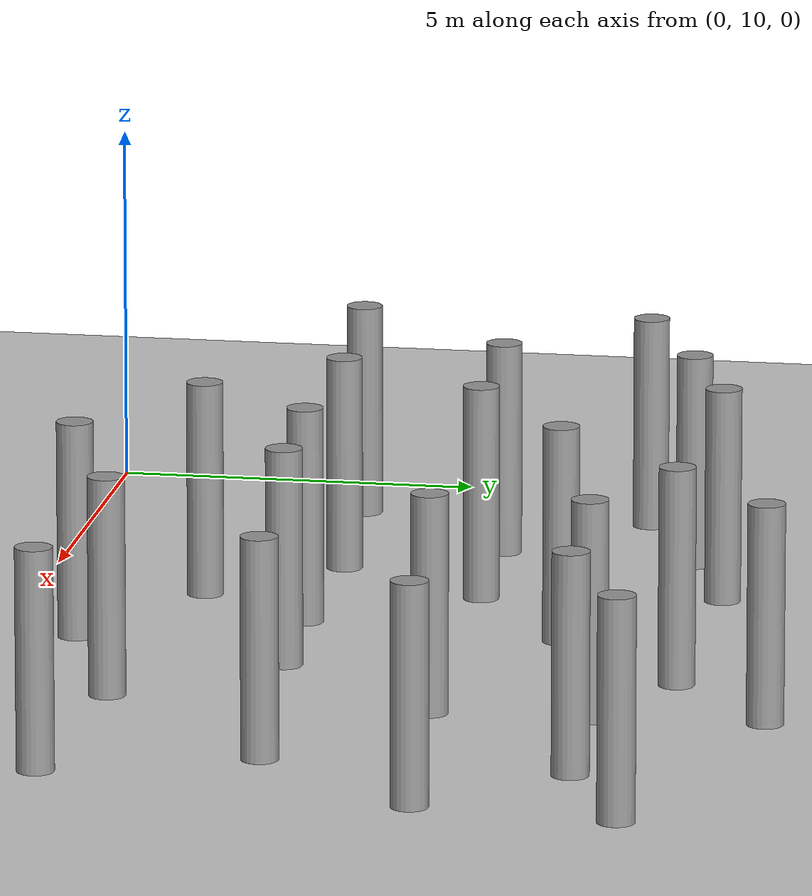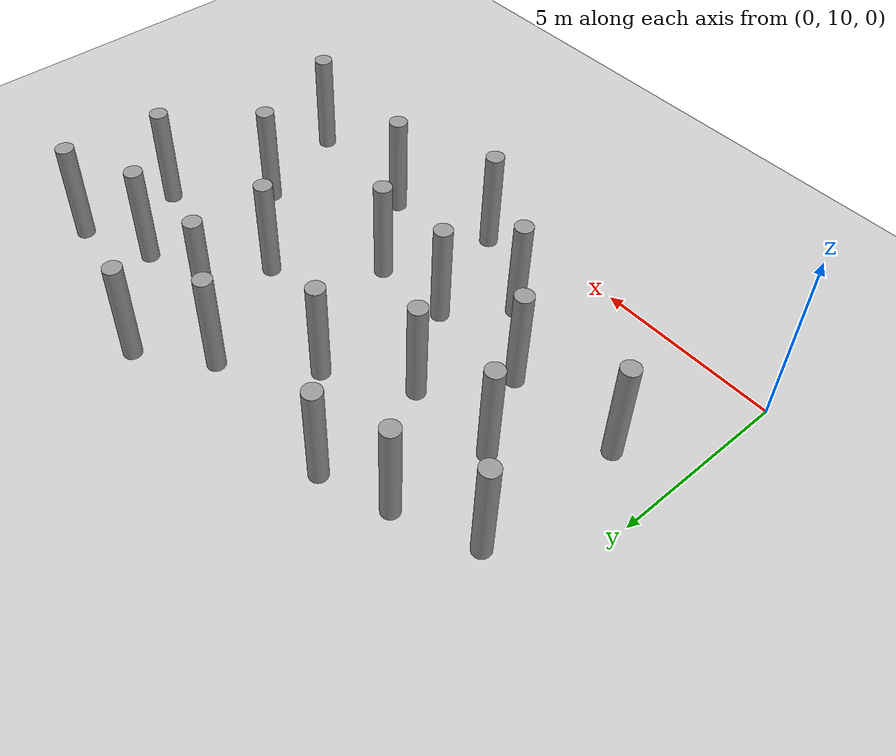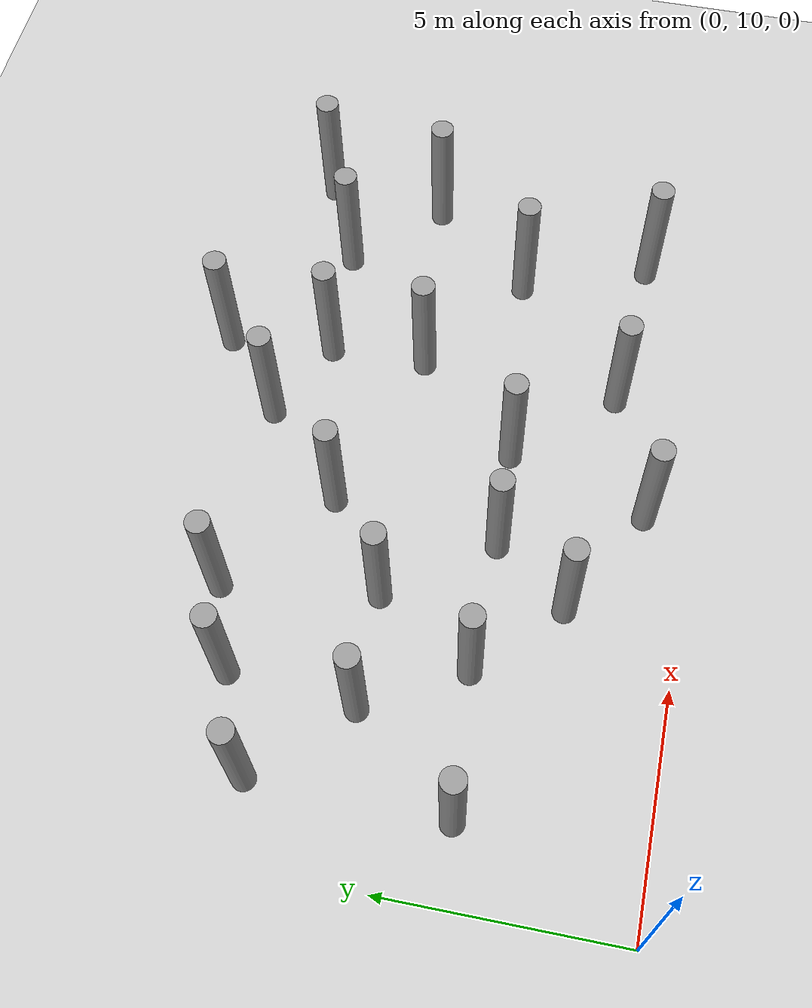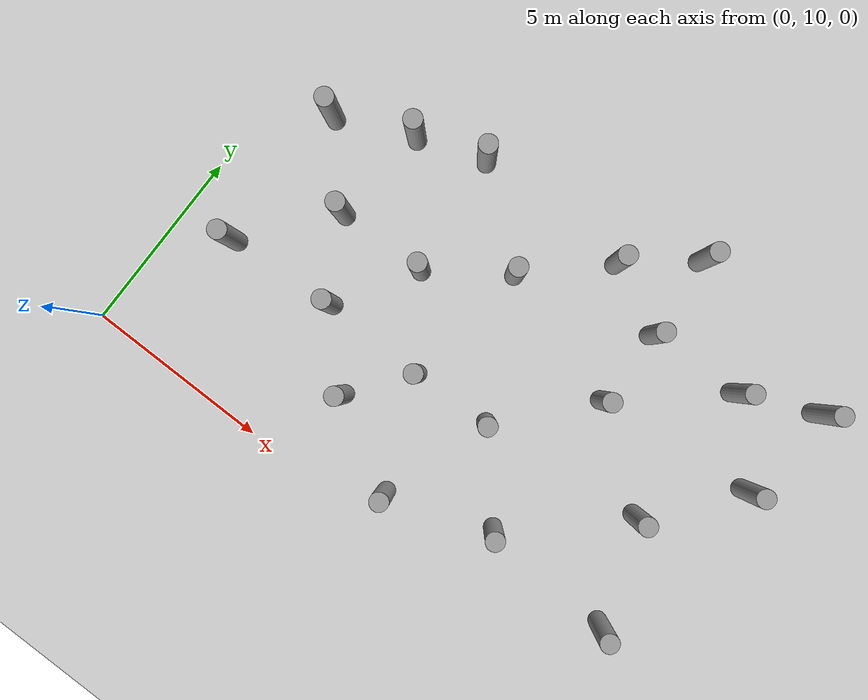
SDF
<sdf version="1.6">
 <world name="default">
  <model name="ground_plane">
   <static>1</static>
   <link name="link">
    <collision name="collision">
     <geometry><plane><normal>0 0 1</normal><size>100 100</size></plane></geometry>
     <surface><friction><ode><mu>100</mu><mu2>50</mu2></ode></friction></surface>
    </collision>
    <visual name="visual">
     <cast_shadows>0</cast_shadows>
     <geometry><plane><normal>0 0 1</normal><size>100 100</size></plane></geometry>
     <material>
      <script><uri>file://media/materials/scripts/gazebo.material</uri><name>Gazebo/Grey</name></script>
     </material>
    </visual>
   </link>
  </model>
  <model name="LjjForest_1">
   <link name="link_0_clone_1">
    <inertial>
     <mass>1</mass>
     <inertia><ixx>0.145833</ixx><ixy>0</ixy><ixz>0</ixz><iyy>0.145833</iyy><iyz>0</iyz><izz>0.125</izz></inertia>
    </inertial>
    <pose>-1.2394 -1.64814 0 0 -0 0</pose>
    <visual name="visual">
     <geometry><cylinder><radius>0.25</radius><length>3</length></cylinder></geometry>
     <material>
      <lighting>1</lighting>
      <script><uri>file://media/materials/scripts/gazebo.material</uri><name>Gazebo/Grey</name></script>
      <shader type="vertex"><normal_map>__default__</normal_map></shader>
      <ambient>0.3 0.3 0.3 1</ambient>
      <diffuse>0.7 0.7 0.7 1</diffuse>
      <specular>0.01 0.01 0.01 1</specular>
      <emissive>0 0 0 1</emissive>
     </material>
    </visual>
    <collision name="collision">
     <geometry><cylinder><radius>0.25</radius><length>3</length></cylinder></geometry>
     <surface>
      <friction>
       <ode><mu>1</mu><mu2>1</mu2><fdir1>0 0 0</fdir1><slip1>0</slip1><slip2>0</slip2></ode>
       <torsional>
        <coefficient>1</coefficient>
        <patch_radius>0</patch_radius>
        <surface_radius>0</surface_radius>
        <use_patch_radius>1</use_patch_radius>
        <ode><slip>0</slip></ode>
       </torsional>
      </friction>
      <bounce><restitution_coefficient>0</restitution_coefficient><threshold>1e+06</threshold></bounce>
      <contact>
       <collide_without_contact>0</collide_without_contact>
       <collide_without_contact_bitmask>1</collide_without_contact_bitmask>
       <collide_bitmask>1</collide_bitmask>
       <ode>
        <soft_cfm>0</soft_cfm>
        <soft_erp>0.2</soft_erp>
        <kp>1e+13</kp>
        <kd>1</kd>
        <max_vel>0.01</max_vel>
        <min_depth>0</min_depth>
       </ode>
       <bullet>
        <split_impulse>1</split_impulse>
        <split_impulse_penetration_threshold>-0.01</split_impulse_penetration_threshold>
        <soft_cfm>0</soft_cfm>
        <soft_erp>0.2</soft_erp>
        <kp>1e+13</kp>
        <kd>1</kd>
       </bullet>
      </contact>
     </surface>
    </collision>
   </link>
   <link name="link_0_clone_10">
    <inertial>
     <mass>1</mass>
     <inertia><ixx>0.145833</ixx><ixy>0</ixy><ixz>0</ixz><iyy>0.145833</iyy><iyz>0</iyz><izz>0.125</izz></inertia>
    </inertial>
    <pose>4.92442 -4.7051 0 0 -0 0</pose>
    <visual name="visual">
     <geometry><cylinder><radius>0.25</radius><length>3</length></cylinder></geometry>
     <material>
      <lighting>1</lighting>
      <script><uri>file://media/materials/scripts/gazebo.material</uri><name>Gazebo/Grey</name></script>
      <shader type="vertex"><normal_map>__default__</normal_map></shader>
      <ambient>0.3 0.3 0.3 1</ambient>
      <diffuse>0.7 0.7 0.7 1</diffuse>
      <specular>0.01 0.01 0.01 1</specular>
      <emissive>0 0 0 1</emissive>
     </material>
    </visual>
    <collision name="collision">
     <geometry><cylinder><radius>0.25</radius><length>3</length></cylinder></geometry>
     <surface>
      <friction>
       <ode><mu>1</mu><mu2>1</mu2><fdir1>0 0 0</fdir1><slip1>0</slip1><slip2>0</slip2></ode>
       <torsional>
        <coefficient>1</coefficient>
        <patch_radius>0</patch_radius>
        <surface_radius>0</surface_radius>
        <use_patch_radius>1</use_patch_radius>
        <ode><slip>0</slip></ode>
       </torsional>
      </friction>
      <bounce><restitution_coefficient>0</restitution_coefficient><threshold>1e+06</threshold></bounce>
      <contact>
       <collide_without_contact>0</collide_without_contact>
       <collide_without_contact_bitmask>1</collide_without_contact_bitmask>
       <collide_bitmask>1</collide_bitmask>
       <ode>
        <soft_cfm>0</soft_cfm>
        <soft_erp>0.2</soft_erp>
        <kp>1e+13</kp>
        <kd>1</kd>
        <max_vel>0.01</max_vel>
        <min_depth>0</min_depth>
       </ode>
       <bullet>
        <split_impulse>1</split_impulse>
        <split_impulse_penetration_threshold>-0.01</split_impulse_penetration_threshold>
        <soft_cfm>0</soft_cfm>
        <soft_erp>0.2</soft_erp>
        <kp>1e+13</kp>
        <kd>1</kd>
       </bullet>
      </contact>
     </surface>
    </collision>
   </link>
   <link name="link_0_clone_11">
    <inertial>
     <mass>1</mass>
     <inertia><ixx>0.145833</ixx><ixy>0</ixy><ixz>0</ixz><iyy>0.145833</iyy><iyz>0</iyz><izz>0.125</izz></inertia>
    </inertial>
    <pose>2.92414 -7.00263 0 0 -0 0</pose>
    <visual name="visual">
     <geometry><cylinder><radius>0.25</radius><length>3</length></cylinder></geometry>
     <material>
      <lighting>1</lighting>
      <script><uri>file://media/materials/scripts/gazebo.material</uri><name>Gazebo/Grey</name></script>
      <shader type="vertex"><normal_map>__default__</normal_map></shader>
      <ambient>0.3 0.3 0.3 1</ambient>
      <diffuse>0.7 0.7 0.7 1</diffuse>
      <specular>0.01 0.01 0.01 1</specular>
      <emissive>0 0 0 1</emissive>
     </material>
    </visual>
    <collision name="collision">
     <geometry><cylinder><radius>0.25</radius><length>3</length></cylinder></geometry>
     <surface>
      <friction>
       <ode><mu>1</mu><mu2>1</mu2><fdir1>0 0 0</fdir1><slip1>0</slip1><slip2>0</slip2></ode>
       <torsional>
        <coefficient>1</coefficient>
        <patch_radius>0</patch_radius>
        <surface_radius>0</surface_radius>
        <use_patch_radius>1</use_patch_radius>
        <ode><slip>0</slip></ode>
       </torsional>
      </friction>
      <bounce><restitution_coefficient>0</restitution_coefficient><threshold>1e+06</threshold></bounce>
      <contact>
       <collide_without_contact>0</collide_without_contact>
       <collide_without_contact_bitmask>1</collide_without_contact_bitmask>
       <collide_bitmask>1</collide_bitmask>
       <ode>
        <soft_cfm>0</soft_cfm>
        <soft_erp>0.2</soft_erp>
        <kp>1e+13</kp>
        <kd>1</kd>
        <max_vel>0.01</max_vel>
        <min_depth>0</min_depth>
       </ode>
       <bullet>
        <split_impulse>1</split_impulse>
        <split_impulse_penetration_threshold>-0.01</split_impulse_penetration_threshold>
        <soft_cfm>0</soft_cfm>
        <soft_erp>0.2</soft_erp>
        <kp>1e+13</kp>
        <kd>1</kd>
       </bullet>
      </contact>
     </surface>
    </collision>
   </link>
   <link name="link_0_clone_12">
    <inertial>
     <mass>1</mass>
     <inertia><ixx>0.145833</ixx><ixy>0</ixy><ixz>0</ixz><iyy>0.145833</iyy><iyz>0</iyz><izz>0.125</izz></inertia>
    </inertial>
    <pose>4.76112 -9.06376 0 0 -0 0</pose>
    <visual name="visual">
     <geometry><cylinder><radius>0.25</radius><length>3</length></cylinder></geometry>
     <material>
      <lighting>1</lighting>
      <script><uri>file://media/materials/scripts/gazebo.material</uri><name>Gazebo/Grey</name></script>
      <shader type="vertex"><normal_map>__default__</normal_map></shader>
      <ambient>0.3 0.3 0.3 1</ambient>
      <diffuse>0.7 0.7 0.7 1</diffuse>
      <specular>0.01 0.01 0.01 1</specular>
      <emissive>0 0 0 1</emissive>
     </material>
    </visual>
    <collision name="collision">
     <geometry><cylinder><radius>0.25</radius><length>3</length></cylinder></geometry>
     <surface>
      <friction>
       <ode><mu>1</mu><mu2>1</mu2><fdir1>0 0 0</fdir1><slip1>0</slip1><slip2>0</slip2></ode>
       <torsional>
        <coefficient>1</coefficient>
        <patch_radius>0</patch_radius>
        <surface_radius>0</surface_radius>
        <use_patch_radius>1</use_patch_radius>
        <ode><slip>0</slip></ode>
       </torsional>
      </friction>
      <bounce><restitution_coefficient>0</restitution_coefficient><threshold>1e+06</threshold></bounce>
      <contact>
       <collide_without_contact>0</collide_without_contact>
       <collide_without_contact_bitmask>1</collide_without_contact_bitmask>
       <collide_bitmask>1</collide_bitmask>
       <ode>
        <soft_cfm>0</soft_cfm>
        <soft_erp>0.2</soft_erp>
        <kp>1e+13</kp>
        <kd>1</kd>
        <max_vel>0.01</max_vel>
        <min_depth>0</min_depth>
       </ode>
       <bullet>
        <split_impulse>1</split_impulse>
        <split_impulse_penetration_threshold>-0.01</split_impulse_penetration_threshold>
        <soft_cfm>0</soft_cfm>
        <soft_erp>0.2</soft_erp>
        <kp>1e+13</kp>
        <kd>1</kd>
       </bullet>
      </contact>
     </surface>
    </collision>
   </link>
   <link name="link_0_clone_13">
    <inertial>
     <mass>1</mass>
     <inertia><ixx>0.145833</ixx><ixy>0</ixy><ixz>0</ixz><iyy>0.145833</iyy><iyz>0</iyz><izz>0.125</izz></inertia>
    </inertial>
    <pose>0.731055 -7.10049 0 0 -0 0</pose>
    <visual name="visual">
     <geometry><cylinder><radius>0.25</radius><length>3</length></cylinder></geometry>
     <material>
      <lighting>1</lighting>
      <script><uri>file://media/materials/scripts/gazebo.material</uri><name>Gazebo/Grey</name></script>
      <shader type="vertex"><normal_map>__default__</normal_map></shader>
      <ambient>0.3 0.3 0.3 1</ambient>
      <diffuse>0.7 0.7 0.7 1</diffuse>
      <specular>0.01 0.01 0.01 1</specular>
      <emissive>0 0 0 1</emissive>
     </material>
    </visual>
    <collision name="collision">
     <geometry><cylinder><radius>0.25</radius><length>3</length></cylinder></geometry>
     <surface>
      <friction>
       <ode><mu>1</mu><mu2>1</mu2><fdir1>0 0 0</fdir1><slip1>0</slip1><slip2>0</slip2></ode>
       <torsional>
        <coefficient>1</coefficient>
        <patch_radius>0</patch_radius>
        <surface_radius>0</surface_radius>
        <use_patch_radius>1</use_patch_radius>
        <ode><slip>0</slip></ode>
       </torsional>
      </friction>
      <bounce><restitution_coefficient>0</restitution_coefficient><threshold>1e+06</threshold></bounce>
      <contact>
       <collide_without_contact>0</collide_without_contact>
       <collide_without_contact_bitmask>1</collide_without_contact_bitmask>
       <collide_bitmask>1</collide_bitmask>
       <ode>
        <soft_cfm>0</soft_cfm>
        <soft_erp>0.2</soft_erp>
        <kp>1e+13</kp>
        <kd>1</kd>
        <max_vel>0.01</max_vel>
        <min_depth>0</min_depth>
       </ode>
       <bullet>
        <split_impulse>1</split_impulse>
        <split_impulse_penetration_threshold>-0.01</split_impulse_penetration_threshold>
        <soft_cfm>0</soft_cfm>
        <soft_erp>0.2</soft_erp>
        <kp>1e+13</kp>
        <kd>1</kd>
       </bullet>
      </contact>
     </surface>
    </collision>
   </link>
   <link name="link_0_clone_14">
    <inertial>
     <mass>1</mass>
     <inertia><ixx>0.145833</ixx><ixy>0</ixy><ixz>0</ixz><iyy>0.145833</iyy><iyz>0</iyz><izz>0.125</izz></inertia>
    </inertial>
    <pose>-0.840028 -4.93267 0 0 -0 0</pose>
    <visual name="visual">
     <geometry><cylinder><radius>0.25</radius><length>3</length></cylinder></geometry>
     <material>
      <lighting>1</lighting>
      <script><uri>file://media/materials/scripts/gazebo.material</uri><name>Gazebo/Grey</name></script>
      <shader type="vertex"><normal_map>__default__</normal_map></shader>
      <ambient>0.3 0.3 0.3 1</ambient>
      <diffuse>0.7 0.7 0.7 1</diffuse>
      <specular>0.01 0.01 0.01 1</specular>
      <emissive>0 0 0 1</emissive>
     </material>
    </visual>
    <collision name="collision">
     <geometry><cylinder><radius>0.25</radius><length>3</length></cylinder></geometry>
     <surface>
      <friction>
       <ode><mu>1</mu><mu2>1</mu2><fdir1>0 0 0</fdir1><slip1>0</slip1><slip2>0</slip2></ode>
       <torsional>
        <coefficient>1</coefficient>
        <patch_radius>0</patch_radius>
        <surface_radius>0</surface_radius>
        <use_patch_radius>1</use_patch_radius>
        <ode><slip>0</slip></ode>
       </torsional>
      </friction>
      <bounce><restitution_coefficient>0</restitution_coefficient><threshold>1e+06</threshold></bounce>
      <contact>
       <collide_without_contact>0</collide_without_contact>
       <collide_without_contact_bitmask>1</collide_without_contact_bitmask>
       <collide_bitmask>1</collide_bitmask>
       <ode>
        <soft_cfm>0</soft_cfm>
        <soft_erp>0.2</soft_erp>
        <kp>1e+13</kp>
        <kd>1</kd>
        <max_vel>0.01</max_vel>
        <min_depth>0</min_depth>
       </ode>
       <bullet>
        <split_impulse>1</split_impulse>
        <split_impulse_penetration_threshold>-0.01</split_impulse_penetration_threshold>
        <soft_cfm>0</soft_cfm>
        <soft_erp>0.2</soft_erp>
        <kp>1e+13</kp>
        <kd>1</kd>
       </bullet>
      </contact>
     </surface>
    </collision>
   </link>
   <link name="link_0_clone_15">
    <inertial>
     <mass>1</mass>
     <inertia><ixx>0.145833</ixx><ixy>0</ixy><ixz>0</ixz><iyy>0.145833</iyy><iyz>0</iyz><izz>0.125</izz></inertia>
    </inertial>
    <pose>-3.03254 -2.29236 0 0 -0 0</pose>
    <visual name="visual">
     <geometry><cylinder><radius>0.25</radius><length>3</length></cylinder></geometry>
     <material>
      <lighting>1</lighting>
      <script><uri>file://media/materials/scripts/gazebo.material</uri><name>Gazebo/Grey</name></script>
      <shader type="vertex"><normal_map>__default__</normal_map></shader>
      <ambient>0.3 0.3 0.3 1</ambient>
      <diffuse>0.7 0.7 0.7 1</diffuse>
      <specular>0.01 0.01 0.01 1</specular>
      <emissive>0 0 0 1</emissive>
     </material>
    </visual>
    <collision name="collision">
     <geometry><cylinder><radius>0.25</radius><length>3</length></cylinder></geometry>
     <surface>
      <friction>
       <ode><mu>1</mu><mu2>1</mu2><fdir1>0 0 0</fdir1><slip1>0</slip1><slip2>0</slip2></ode>
       <torsional>
        <coefficient>1</coefficient>
        <patch_radius>0</patch_radius>
        <surface_radius>0</surface_radius>
        <use_patch_radius>1</use_patch_radius>
        <ode><slip>0</slip></ode>
       </torsional>
      </friction>
      <bounce><restitution_coefficient>0</restitution_coefficient><threshold>1e+06</threshold></bounce>
      <contact>
       <collide_without_contact>0</collide_without_contact>
       <collide_without_contact_bitmask>1</collide_without_contact_bitmask>
       <collide_bitmask>1</collide_bitmask>
       <ode>
        <soft_cfm>0</soft_cfm>
        <soft_erp>0.2</soft_erp>
        <kp>1e+13</kp>
        <kd>1</kd>
        <max_vel>0.01</max_vel>
        <min_depth>0</min_depth>
       </ode>
       <bullet>
        <split_impulse>1</split_impulse>
        <split_impulse_penetration_threshold>-0.01</split_impulse_penetration_threshold>
        <soft_cfm>0</soft_cfm>
        <soft_erp>0.2</soft_erp>
        <kp>1e+13</kp>
        <kd>1</kd>
       </bullet>
      </contact>
     </surface>
    </collision>
   </link>
   <link name="link_0_clone_16">
    <inertial>
     <mass>1</mass>
     <inertia><ixx>0.145833</ixx><ixy>0</ixy><ixz>0</ixz><iyy>0.145833</iyy><iyz>0</iyz><izz>0.125</izz></inertia>
    </inertial>
    <pose>-5.04025 -3.1815 0 0 -0 0</pose>
    <visual name="visual">
     <geometry><cylinder><radius>0.25</radius><length>3</length></cylinder></geometry>
     <material>
      <lighting>1</lighting>
      <script><uri>file://media/materials/scripts/gazebo.material</uri><name>Gazebo/Grey</name></script>
      <shader type="vertex"><normal_map>__default__</normal_map></shader>
      <ambient>0.3 0.3 0.3 1</ambient>
      <diffuse>0.7 0.7 0.7 1</diffuse>
      <specular>0.01 0.01 0.01 1</specular>
      <emissive>0 0 0 1</emissive>
     </material>
    </visual>
    <collision name="collision">
     <geometry><cylinder><radius>0.25</radius><length>3</length></cylinder></geometry>
     <surface>
      <friction>
       <ode><mu>1</mu><mu2>1</mu2><fdir1>0 0 0</fdir1><slip1>0</slip1><slip2>0</slip2></ode>
       <torsional>
        <coefficient>1</coefficient>
        <patch_radius>0</patch_radius>
        <surface_radius>0</surface_radius>
        <use_patch_radius>1</use_patch_radius>
        <ode><slip>0</slip></ode>
       </torsional>
      </friction>
      <bounce><restitution_coefficient>0</restitution_coefficient><threshold>1e+06</threshold></bounce>
      <contact>
       <collide_without_contact>0</collide_without_contact>
       <collide_without_contact_bitmask>1</collide_without_contact_bitmask>
       <collide_bitmask>1</collide_bitmask>
       <ode>
        <soft_cfm>0</soft_cfm>
        <soft_erp>0.2</soft_erp>
        <kp>1e+13</kp>
        <kd>1</kd>
        <max_vel>0.01</max_vel>
        <min_depth>0</min_depth>
       </ode>
       <bullet>
        <split_impulse>1</split_impulse>
        <split_impulse_penetration_threshold>-0.01</split_impulse_penetration_threshold>
        <soft_cfm>0</soft_cfm>
        <soft_erp>0.2</soft_erp>
        <kp>1e+13</kp>
        <kd>1</kd>
       </bullet>
      </contact>
     </surface>
    </collision>
   </link>
   <link name="link_0_clone_17">
    <inertial>
     <mass>1</mass>
     <inertia><ixx>0.145833</ixx><ixy>0</ixy><ixz>0</ixz><iyy>0.145833</iyy><iyz>0</iyz><izz>0.125</izz></inertia>
    </inertial>
    <pose>-3.28823 -4.99733 0 0 -0 0</pose>
    <visual name="visual">
     <geometry><cylinder><radius>0.25</radius><length>3</length></cylinder></geometry>
     <material>
      <lighting>1</lighting>
      <script><uri>file://media/materials/scripts/gazebo.material</uri><name>Gazebo/Grey</name></script>
      <shader type="vertex"><normal_map>__default__</normal_map></shader>
      <ambient>0.3 0.3 0.3 1</ambient>
      <diffuse>0.7 0.7 0.7 1</diffuse>
      <specular>0.01 0.01 0.01 1</specular>
      <emissive>0 0 0 1</emissive>
     </material>
    </visual>
    <collision name="collision">
     <geometry><cylinder><radius>0.25</radius><length>3</length></cylinder></geometry>
     <surface>
      <friction>
       <ode><mu>1</mu><mu2>1</mu2><fdir1>0 0 0</fdir1><slip1>0</slip1><slip2>0</slip2></ode>
       <torsional>
        <coefficient>1</coefficient>
        <patch_radius>0</patch_radius>
        <surface_radius>0</surface_radius>
        <use_patch_radius>1</use_patch_radius>
        <ode><slip>0</slip></ode>
       </torsional>
      </friction>
      <bounce><restitution_coefficient>0</restitution_coefficient><threshold>1e+06</threshold></bounce>
      <contact>
       <collide_without_contact>0</collide_without_contact>
       <collide_without_contact_bitmask>1</collide_without_contact_bitmask>
       <collide_bitmask>1</collide_bitmask>
       <ode>
        <soft_cfm>0</soft_cfm>
        <soft_erp>0.2</soft_erp>
        <kp>1e+13</kp>
        <kd>1</kd>
        <max_vel>0.01</max_vel>
        <min_depth>0</min_depth>
       </ode>
       <bullet>
        <split_impulse>1</split_impulse>
        <split_impulse_penetration_threshold>-0.01</split_impulse_penetration_threshold>
        <soft_cfm>0</soft_cfm>
        <soft_erp>0.2</soft_erp>
        <kp>1e+13</kp>
        <kd>1</kd>
       </bullet>
      </contact>
     </surface>
    </collision>
   </link>
   <link name="link_0_clone_18">
    <inertial>
     <mass>1</mass>
     <inertia><ixx>0.145833</ixx><ixy>0</ixy><ixz>0</ixz><iyy>0.145833</iyy><iyz>0</iyz><izz>0.125</izz></inertia>
    </inertial>
    <pose>-2.11118 -7.04502 0 0 -0 0</pose>
    <visual name="visual">
     <geometry><cylinder><radius>0.25</radius><length>3</length></cylinder></geometry>
     <material>
      <lighting>1</lighting>
      <script><uri>file://media/materials/scripts/gazebo.material</uri><name>Gazebo/Grey</name></script>
      <shader type="vertex"><normal_map>__default__</normal_map></shader>
      <ambient>0.3 0.3 0.3 1</ambient>
      <diffuse>0.7 0.7 0.7 1</diffuse>
      <specular>0.01 0.01 0.01 1</specular>
      <emissive>0 0 0 1</emissive>
     </material>
    </visual>
    <collision name="collision">
     <geometry><cylinder><radius>0.25</radius><length>3</length></cylinder></geometry>
     <surface>
      <friction>
       <ode><mu>1</mu><mu2>1</mu2><fdir1>0 0 0</fdir1><slip1>0</slip1><slip2>0</slip2></ode>
       <torsional>
        <coefficient>1</coefficient>
        <patch_radius>0</patch_radius>
        <surface_radius>0</surface_radius>
        <use_patch_radius>1</use_patch_radius>
        <ode><slip>0</slip></ode>
       </torsional>
      </friction>
      <bounce><restitution_coefficient>0</restitution_coefficient><threshold>1e+06</threshold></bounce>
      <contact>
       <collide_without_contact>0</collide_without_contact>
       <collide_without_contact_bitmask>1</collide_without_contact_bitmask>
       <collide_bitmask>1</collide_bitmask>
       <ode>
        <soft_cfm>0</soft_cfm>
        <soft_erp>0.2</soft_erp>
        <kp>1e+13</kp>
        <kd>1</kd>
        <max_vel>0.01</max_vel>
        <min_depth>0</min_depth>
       </ode>
       <bullet>
        <split_impulse>1</split_impulse>
        <split_impulse_penetration_threshold>-0.01</split_impulse_penetration_threshold>
        <soft_cfm>0</soft_cfm>
        <soft_erp>0.2</soft_erp>
        <kp>1e+13</kp>
        <kd>1</kd>
       </bullet>
      </contact>
     </surface>
    </collision>
   </link>
   <link name="link_0_clone_19">
    <inertial>
     <mass>1</mass>
     <inertia><ixx>0.145833</ixx><ixy>0</ixy><ixz>0</ixz><iyy>0.145833</iyy><iyz>0</iyz><izz>0.125</izz></inertia>
    </inertial>
    <pose>-0.4391 -8.69513 0 0 -0 0</pose>
    <visual name="visual">
     <geometry><cylinder><radius>0.25</radius><length>3</length></cylinder></geometry>
     <material>
      <lighting>1</lighting>
      <script><uri>file://media/materials/scripts/gazebo.material</uri><name>Gazebo/Grey</name></script>
      <shader type="vertex"><normal_map>__default__</normal_map></shader>
      <ambient>0.3 0.3 0.3 1</ambient>
      <diffuse>0.7 0.7 0.7 1</diffuse>
      <specular>0.01 0.01 0.01 1</specular>
      <emissive>0 0 0 1</emissive>
     </material>
    </visual>
    <collision name="collision">
     <geometry><cylinder><radius>0.25</radius><length>3</length></cylinder></geometry>
     <surface>
      <friction>
       <ode><mu>1</mu><mu2>1</mu2><fdir1>0 0 0</fdir1><slip1>0</slip1><slip2>0</slip2></ode>
       <torsional>
        <coefficient>1</coefficient>
        <patch_radius>0</patch_radius>
        <surface_radius>0</surface_radius>
        <use_patch_radius>1</use_patch_radius>
        <ode><slip>0</slip></ode>
       </torsional>
      </friction>
      <bounce><restitution_coefficient>0</restitution_coefficient><threshold>1e+06</threshold></bounce>
      <contact>
       <collide_without_contact>0</collide_without_contact>
       <collide_without_contact_bitmask>1</collide_without_contact_bitmask>
       <collide_bitmask>1</collide_bitmask>
       <ode>
        <soft_cfm>0</soft_cfm>
        <soft_erp>0.2</soft_erp>
        <kp>1e+13</kp>
        <kd>1</kd>
        <max_vel>0.01</max_vel>
        <min_depth>0</min_depth>
       </ode>
       <bullet>
        <split_impulse>1</split_impulse>
        <split_impulse_penetration_threshold>-0.01</split_impulse_penetration_threshold>
        <soft_cfm>0</soft_cfm>
        <soft_erp>0.2</soft_erp>
        <kp>1e+13</kp>
        <kd>1</kd>
       </bullet>
      </contact>
     </surface>
    </collision>
   </link>
   <link name="link_0_clone_20">
    <inertial>
     <mass>1</mass>
     <inertia><ixx>0.145833</ixx><ixy>0</ixy><ixz>0</ixz><iyy>0.145833</iyy><iyz>0</iyz><izz>0.125</izz></inertia>
    </inertial>
    <pose>1.97365 -10.0303 0 0 -0 0</pose>
    <visual name="visual">
     <geometry><cylinder><radius>0.25</radius><length>3</length></cylinder></geometry>
     <material>
      <lighting>1</lighting>
      <script><uri>file://media/materials/scripts/gazebo.material</uri><name>Gazebo/Grey</name></script>
      <shader type="vertex"><normal_map>__default__</normal_map></shader>
      <ambient>0.3 0.3 0.3 1</ambient>
      <diffuse>0.7 0.7 0.7 1</diffuse>
      <specular>0.01 0.01 0.01 1</specular>
      <emissive>0 0 0 1</emissive>
     </material>
    </visual>
    <collision name="collision">
     <geometry><cylinder><radius>0.25</radius><length>3</length></cylinder></geometry>
     <surface>
      <friction>
       <ode><mu>1</mu><mu2>1</mu2><fdir1>0 0 0</fdir1><slip1>0</slip1><slip2>0</slip2></ode>
       <torsional>
        <coefficient>1</coefficient>
        <patch_radius>0</patch_radius>
        <surface_radius>0</surface_radius>
        <use_patch_radius>1</use_patch_radius>
        <ode><slip>0</slip></ode>
       </torsional>
      </friction>
      <bounce><restitution_coefficient>0</restitution_coefficient><threshold>1e+06</threshold></bounce>
      <contact>
       <collide_without_contact>0</collide_without_contact>
       <collide_without_contact_bitmask>1</collide_without_contact_bitmask>
       <collide_bitmask>1</collide_bitmask>
       <ode>
        <soft_cfm>0</soft_cfm>
        <soft_erp>0.2</soft_erp>
        <kp>1e+13</kp>
        <kd>1</kd>
        <max_vel>0.01</max_vel>
        <min_depth>0</min_depth>
       </ode>
       <bullet>
        <split_impulse>1</split_impulse>
        <split_impulse_penetration_threshold>-0.01</split_impulse_penetration_threshold>
        <soft_cfm>0</soft_cfm>
        <soft_erp>0.2</soft_erp>
        <kp>1e+13</kp>
        <kd>1</kd>
       </bullet>
      </contact>
     </surface>
    </collision>
   </link>
   <link name="link_0_clone_22">
    <inertial>
     <mass>1</mass>
     <inertia><ixx>0.145833</ixx><ixy>0</ixy><ixz>0</ixz><iyy>0.145833</iyy><iyz>0</iyz><izz>0.125</izz></inertia>
    </inertial>
    <pose>-5.1094 -7.26741 0 0 -0 0</pose>
    <visual name="visual">
     <geometry><cylinder><radius>0.25</radius><length>3</length></cylinder></geometry>
     <material>
      <lighting>1</lighting>
      <script><uri>file://media/materials/scripts/gazebo.material</uri><name>Gazebo/Grey</name></script>
      <shader type="vertex"><normal_map>__default__</normal_map></shader>
      <ambient>0.3 0.3 0.3 1</ambient>
      <diffuse>0.7 0.7 0.7 1</diffuse>
      <specular>0.01 0.01 0.01 1</specular>
      <emissive>0 0 0 1</emissive>
     </material>
    </visual>
    <collision name="collision">
     <geometry><cylinder><radius>0.25</radius><length>3</length></cylinder></geometry>
     <surface>
      <friction>
       <ode><mu>1</mu><mu2>1</mu2><fdir1>0 0 0</fdir1><slip1>0</slip1><slip2>0</slip2></ode>
       <torsional>
        <coefficient>1</coefficient>
        <patch_radius>0</patch_radius>
        <surface_radius>0</surface_radius>
        <use_patch_radius>1</use_patch_radius>
        <ode><slip>0</slip></ode>
       </torsional>
      </friction>
      <bounce><restitution_coefficient>0</restitution_coefficient><threshold>1e+06</threshold></bounce>
      <contact>
       <collide_without_contact>0</collide_without_contact>
       <collide_without_contact_bitmask>1</collide_without_contact_bitmask>
       <collide_bitmask>1</collide_bitmask>
       <ode>
        <soft_cfm>0</soft_cfm>
        <soft_erp>0.2</soft_erp>
        <kp>1e+13</kp>
        <kd>1</kd>
        <max_vel>0.01</max_vel>
        <min_depth>0</min_depth>
       </ode>
       <bullet>
        <split_impulse>1</split_impulse>
        <split_impulse_penetration_threshold>-0.01</split_impulse_penetration_threshold>
        <soft_cfm>0</soft_cfm>
        <soft_erp>0.2</soft_erp>
        <kp>1e+13</kp>
        <kd>1</kd>
       </bullet>
      </contact>
     </surface>
    </collision>
   </link>
   <link name="link_0_clone_32">
    <inertial>
     <mass>1</mass>
     <inertia><ixx>0.145833</ixx><ixy>0</ixy><ixz>0</ixz><iyy>0.145833</iyy><iyz>0</iyz><izz>0.125</izz></inertia>
    </inertial>
    <pose>3.04344 -1.68403 0 0 -0 0</pose>
    <visual name="visual">
     <geometry><cylinder><radius>0.25</radius><length>3</length></cylinder></geometry>
     <material>
      <lighting>1</lighting>
      <script><uri>file://media/materials/scripts/gazebo.material</uri><name>Gazebo/Grey</name></script>
      <shader type="vertex"><normal_map>__default__</normal_map></shader>
      <ambient>0.3 0.3 0.3 1</ambient>
      <diffuse>0.7 0.7 0.7 1</diffuse>
      <specular>0.01 0.01 0.01 1</specular>
      <emissive>0 0 0 1</emissive>
     </material>
    </visual>
    <collision name="collision">
     <geometry><cylinder><radius>0.25</radius><length>3</length></cylinder></geometry>
     <surface>
      <friction>
       <ode><mu>1</mu><mu2>1</mu2><fdir1>0 0 0</fdir1><slip1>0</slip1><slip2>0</slip2></ode>
       <torsional>
        <coefficient>1</coefficient>
        <patch_radius>0</patch_radius>
        <surface_radius>0</surface_radius>
        <use_patch_radius>1</use_patch_radius>
        <ode><slip>0</slip></ode>
       </torsional>
      </friction>
      <bounce><restitution_coefficient>0</restitution_coefficient><threshold>1e+06</threshold></bounce>
      <contact>
       <collide_without_contact>0</collide_without_contact>
       <collide_without_contact_bitmask>1</collide_without_contact_bitmask>
       <collide_bitmask>1</collide_bitmask>
       <ode>
        <soft_cfm>0</soft_cfm>
        <soft_erp>0.2</soft_erp>
        <kp>1e+13</kp>
        <kd>1</kd>
        <max_vel>0.01</max_vel>
        <min_depth>0</min_depth>
       </ode>
       <bullet>
        <split_impulse>1</split_impulse>
        <split_impulse_penetration_threshold>-0.01</split_impulse_penetration_threshold>
        <soft_cfm>0</soft_cfm>
        <soft_erp>0.2</soft_erp>
        <kp>1e+13</kp>
        <kd>1</kd>
       </bullet>
      </contact>
     </surface>
    </collision>
   </link>
   <link name="link_0_clone_7">
    <inertial>
     <mass>1</mass>
     <inertia><ixx>0.145833</ixx><ixy>0</ixy><ixz>0</ixz><iyy>0.145833</iyy><iyz>0</iyz><izz>0.125</izz></inertia>
    </inertial>
    <pose>1.14853 -3.52752 0 0 -0 0</pose>
    <visual name="visual">
     <geometry><cylinder><radius>0.25</radius><length>3</length></cylinder></geometry>
     <material>
      <lighting>1</lighting>
      <script><uri>file://media/materials/scripts/gazebo.material</uri><name>Gazebo/Grey</name></script>
      <shader type="vertex"><normal_map>__default__</normal_map></shader>
      <ambient>0.3 0.3 0.3 1</ambient>
      <diffuse>0.7 0.7 0.7 1</diffuse>
      <specular>0.01 0.01 0.01 1</specular>
      <emissive>0 0 0 1</emissive>
     </material>
    </visual>
    <collision name="collision">
     <geometry><cylinder><radius>0.25</radius><length>3</length></cylinder></geometry>
     <surface>
      <friction>
       <ode><mu>1</mu><mu2>1</mu2><fdir1>0 0 0</fdir1><slip1>0</slip1><slip2>0</slip2></ode>
       <torsional>
        <coefficient>1</coefficient>
        <patch_radius>0</patch_radius>
        <surface_radius>0</surface_radius>
        <use_patch_radius>1</use_patch_radius>
        <ode><slip>0</slip></ode>
       </torsional>
      </friction>
      <bounce><restitution_coefficient>0</restitution_coefficient><threshold>1e+06</threshold></bounce>
      <contact>
       <collide_without_contact>0</collide_without_contact>
       <collide_without_contact_bitmask>1</collide_without_contact_bitmask>
       <collide_bitmask>1</collide_bitmask>
       <ode>
        <soft_cfm>0</soft_cfm>
        <soft_erp>0.2</soft_erp>
        <kp>1e+13</kp>
        <kd>1</kd>
        <max_vel>0.01</max_vel>
        <min_depth>0</min_depth>
       </ode>
       <bullet>
        <split_impulse>1</split_impulse>
        <split_impulse_penetration_threshold>-0.01</split_impulse_penetration_threshold>
        <soft_cfm>0</soft_cfm>
        <soft_erp>0.2</soft_erp>
        <kp>1e+13</kp>
        <kd>1</kd>
       </bullet>
      </contact>
     </surface>
    </collision>
   </link>
   <link name="link_0_clone_8">
    <inertial>
     <mass>1</mass>
     <inertia><ixx>0.145833</ixx><ixy>0</ixy><ixz>0</ixz><iyy>0.145833</iyy><iyz>0</iyz><izz>0.125</izz></inertia>
    </inertial>
    <pose>4.72743 -0.273206 0 0 -0 0</pose>
    <visual name="visual">
     <geometry><cylinder><radius>0.25</radius><length>3</length></cylinder></geometry>
     <material>
      <lighting>1</lighting>
      <script><uri>file://media/materials/scripts/gazebo.material</uri><name>Gazebo/Grey</name></script>
      <shader type="vertex"><normal_map>__default__</normal_map></shader>
      <ambient>0.3 0.3 0.3 1</ambient>
      <diffuse>0.7 0.7 0.7 1</diffuse>
      <specular>0.01 0.01 0.01 1</specular>
      <emissive>0 0 0 1</emissive>
     </material>
    </visual>
    <collision name="collision">
     <geometry><cylinder><radius>0.25</radius><length>3</length></cylinder></geometry>
     <surface>
      <friction>
       <ode><mu>1</mu><mu2>1</mu2><fdir1>0 0 0</fdir1><slip1>0</slip1><slip2>0</slip2></ode>
       <torsional>
        <coefficient>1</coefficient>
        <patch_radius>0</patch_radius>
        <surface_radius>0</surface_radius>
        <use_patch_radius>1</use_patch_radius>
        <ode><slip>0</slip></ode>
       </torsional>
      </friction>
      <bounce><restitution_coefficient>0</restitution_coefficient><threshold>1e+06</threshold></bounce>
      <contact>
       <collide_without_contact>0</collide_without_contact>
       <collide_without_contact_bitmask>1</collide_without_contact_bitmask>
       <collide_bitmask>1</collide_bitmask>
       <ode>
        <soft_cfm>0</soft_cfm>
        <soft_erp>0.2</soft_erp>
        <kp>1e+13</kp>
        <kd>1</kd>
        <max_vel>0.01</max_vel>
        <min_depth>0</min_depth>
       </ode>
       <bullet>
        <split_impulse>1</split_impulse>
        <split_impulse_penetration_threshold>-0.01</split_impulse_penetration_threshold>
        <soft_cfm>0</soft_cfm>
        <soft_erp>0.2</soft_erp>
        <kp>1e+13</kp>
        <kd>1</kd>
       </bullet>
      </contact>
     </surface>
    </collision>
   </link>
   <link name="link_0_clone_9">
    <inertial>
     <mass>1</mass>
     <inertia><ixx>0.145833</ixx><ixy>0</ixy><ixz>0</ixz><iyy>0.145833</iyy><iyz>0</iyz><izz>0.125</izz></inertia>
    </inertial>
    <pose>4.89769 -2.58143 0 0 -0 0</pose>
    <visual name="visual">
     <geometry><cylinder><radius>0.25</radius><length>3</length></cylinder></geometry>
     <material>
      <lighting>1</lighting>
      <script><uri>file://media/materials/scripts/gazebo.material</uri><name>Gazebo/Grey</name></script>
      <shader type="vertex"><normal_map>__default__</normal_map></shader>
      <ambient>0.3 0.3 0.3 1</ambient>
      <diffuse>0.7 0.7 0.7 1</diffuse>
      <specular>0.01 0.01 0.01 1</specular>
      <emissive>0 0 0 1</emissive>
     </material>
    </visual>
    <collision name="collision">
     <geometry><cylinder><radius>0.25</radius><length>3</length></cylinder></geometry>
     <surface>
      <friction>
       <ode><mu>1</mu><mu2>1</mu2><fdir1>0 0 0</fdir1><slip1>0</slip1><slip2>0</slip2></ode>
       <torsional>
        <coefficient>1</coefficient>
        <patch_radius>0</patch_radius>
        <surface_radius>0</surface_radius>
        <use_patch_radius>1</use_patch_radius>
        <ode><slip>0</slip></ode>
       </torsional>
      </friction>
      <bounce><restitution_coefficient>0</restitution_coefficient><threshold>1e+06</threshold></bounce>
      <contact>
       <collide_without_contact>0</collide_without_contact>
       <collide_without_contact_bitmask>1</collide_without_contact_bitmask>
       <collide_bitmask>1</collide_bitmask>
       <ode>
        <soft_cfm>0</soft_cfm>
        <soft_erp>0.2</soft_erp>
        <kp>1e+13</kp>
        <kd>1</kd>
        <max_vel>0.01</max_vel>
        <min_depth>0</min_depth>
       </ode>
       <bullet>
        <split_impulse>1</split_impulse>
        <split_impulse_penetration_threshold>-0.01</split_impulse_penetration_threshold>
        <soft_cfm>0</soft_cfm>
        <soft_erp>0.2</soft_erp>
        <kp>1e+13</kp>
        <kd>1</kd>
       </bullet>
      </contact>
     </surface>
    </collision>
   </link>
   <static>0</static>
   <pose>6.6881 21.007 1.49999 0 -0 0.002263</pose>
  </model>
  <model name="LjjForest_2">
   <link name="link_0_clone_15">
    <inertial>
     <mass>1</mass>
     <inertia><ixx>0.145833</ixx><ixy>0</ixy><ixz>0</ixz><iyy>0.145833</iyy><iyz>0</iyz><izz>0.125</izz></inertia>
    </inertial>
    <pose>-3.03254 -2.29236 0 0 -0 0</pose>
    <visual name="visual">
     <geometry><cylinder><radius>0.25</radius><length>3</length></cylinder></geometry>
     <material>
      <lighting>1</lighting>
      <script><uri>file://media/materials/scripts/gazebo.material</uri><name>Gazebo/Grey</name></script>
      <shader type="vertex"><normal_map>__default__</normal_map></shader>
      <ambient>0.3 0.3 0.3 1</ambient>
      <diffuse>0.7 0.7 0.7 1</diffuse>
      <specular>0.01 0.01 0.01 1</specular>
      <emissive>0 0 0 1</emissive>
     </material>
    </visual>
    <collision name="collision">
     <geometry><cylinder><radius>0.25</radius><length>3</length></cylinder></geometry>
     <surface>
      <friction>
       <ode><mu>1</mu><mu2>1</mu2><fdir1>0 0 0</fdir1><slip1>0</slip1><slip2>0</slip2></ode>
       <torsional>
        <coefficient>1</coefficient>
        <patch_radius>0</patch_radius>
        <surface_radius>0</surface_radius>
        <use_patch_radius>1</use_patch_radius>
        <ode><slip>0</slip></ode>
       </torsional>
      </friction>
      <bounce><restitution_coefficient>0</restitution_coefficient><threshold>1e+06</threshold></bounce>
      <contact>
       <collide_without_contact>0</collide_without_contact>
       <collide_without_contact_bitmask>1</collide_without_contact_bitmask>
       <collide_bitmask>1</collide_bitmask>
       <ode>
        <soft_cfm>0</soft_cfm>
        <soft_erp>0.2</soft_erp>
        <kp>1e+13</kp>
        <kd>1</kd>
        <max_vel>0.01</max_vel>
        <min_depth>0</min_depth>
       </ode>
       <bullet>
        <split_impulse>1</split_impulse>
        <split_impulse_penetration_threshold>-0.01</split_impulse_penetration_threshold>
        <soft_cfm>0</soft_cfm>
        <soft_erp>0.2</soft_erp>
        <kp>1e+13</kp>
        <kd>1</kd>
       </bullet>
      </contact>
     </surface>
    </collision>
   </link>
   <link name="link_0_clone_16">
    <inertial>
     <mass>1</mass>
     <inertia><ixx>0.145833</ixx><ixy>0</ixy><ixz>0</ixz><iyy>0.145833</iyy><iyz>0</iyz><izz>0.125</izz></inertia>
    </inertial>
    <pose>-5.04025 -3.1815 0 0 -0 0</pose>
    <visual name="visual">
     <geometry><cylinder><radius>0.25</radius><length>3</length></cylinder></geometry>
     <material>
      <lighting>1</lighting>
      <script><uri>file://media/materials/scripts/gazebo.material</uri><name>Gazebo/Grey</name></script>
      <shader type="vertex"><normal_map>__default__</normal_map></shader>
      <ambient>0.3 0.3 0.3 1</ambient>
      <diffuse>0.7 0.7 0.7 1</diffuse>
      <specular>0.01 0.01 0.01 1</specular>
      <emissive>0 0 0 1</emissive>
     </material>
    </visual>
    <collision name="collision">
     <geometry><cylinder><radius>0.25</radius><length>3</length></cylinder></geometry>
     <surface>
      <friction>
       <ode><mu>1</mu><mu2>1</mu2><fdir1>0 0 0</fdir1><slip1>0</slip1><slip2>0</slip2></ode>
       <torsional>
        <coefficient>1</coefficient>
        <patch_radius>0</patch_radius>
        <surface_radius>0</surface_radius>
        <use_patch_radius>1</use_patch_radius>
        <ode><slip>0</slip></ode>
       </torsional>
      </friction>
      <bounce><restitution_coefficient>0</restitution_coefficient><threshold>1e+06</threshold></bounce>
      <contact>
       <collide_without_contact>0</collide_without_contact>
       <collide_without_contact_bitmask>1</collide_without_contact_bitmask>
       <collide_bitmask>1</collide_bitmask>
       <ode>
        <soft_cfm>0</soft_cfm>
        <soft_erp>0.2</soft_erp>
        <kp>1e+13</kp>
        <kd>1</kd>
        <max_vel>0.01</max_vel>
        <min_depth>0</min_depth>
       </ode>
       <bullet>
        <split_impulse>1</split_impulse>
        <split_impulse_penetration_threshold>-0.01</split_impulse_penetration_threshold>
        <soft_cfm>0</soft_cfm>
        <soft_erp>0.2</soft_erp>
        <kp>1e+13</kp>
        <kd>1</kd>
       </bullet>
      </contact>
     </surface>
    </collision>
   </link>
   <link name="link_0_clone_17">
    <inertial>
     <mass>1</mass>
     <inertia><ixx>0.145833</ixx><ixy>0</ixy><ixz>0</ixz><iyy>0.145833</iyy><iyz>0</iyz><izz>0.125</izz></inertia>
    </inertial>
    <pose>-3.28823 -4.99733 0 0 -0 0</pose>
    <visual name="visual">
     <geometry><cylinder><radius>0.25</radius><length>3</length></cylinder></geometry>
     <material>
      <lighting>1</lighting>
      <script><uri>file://media/materials/scripts/gazebo.material</uri><name>Gazebo/Grey</name></script>
      <shader type="vertex"><normal_map>__default__</normal_map></shader>
      <ambient>0.3 0.3 0.3 1</ambient>
      <diffuse>0.7 0.7 0.7 1</diffuse>
      <specular>0.01 0.01 0.01 1</specular>
      <emissive>0 0 0 1</emissive>
     </material>
    </visual>
    <collision name="collision">
     <geometry><cylinder><radius>0.25</radius><length>3</length></cylinder></geometry>
     <surface>
      <friction>
       <ode><mu>1</mu><mu2>1</mu2><fdir1>0 0 0</fdir1><slip1>0</slip1><slip2>0</slip2></ode>
       <torsional>
        <coefficient>1</coefficient>
        <patch_radius>0</patch_radius>
        <surface_radius>0</surface_radius>
        <use_patch_radius>1</use_patch_radius>
        <ode><slip>0</slip></ode>
       </torsional>
      </friction>
      <bounce><restitution_coefficient>0</restitution_coefficient><threshold>1e+06</threshold></bounce>
      <contact>
       <collide_without_contact>0</collide_without_contact>
       <collide_without_contact_bitmask>1</collide_without_contact_bitmask>
       <collide_bitmask>1</collide_bitmask>
       <ode>
        <soft_cfm>0</soft_cfm>
        <soft_erp>0.2</soft_erp>
        <kp>1e+13</kp>
        <kd>1</kd>
        <max_vel>0.01</max_vel>
        <min_depth>0</min_depth>
       </ode>
       <bullet>
        <split_impulse>1</split_impulse>
        <split_impulse_penetration_threshold>-0.01</split_impulse_penetration_threshold>
        <soft_cfm>0</soft_cfm>
        <soft_erp>0.2</soft_erp>
        <kp>1e+13</kp>
        <kd>1</kd>
       </bullet>
      </contact>
     </surface>
    </collision>
   </link>
   <link name="link_0_clone_21">
    <inertial>
     <mass>1</mass>
     <inertia><ixx>0.145833</ixx><ixy>0</ixy><ixz>0</ixz><iyy>0.145833</iyy><iyz>0</iyz><izz>0.125</izz></inertia>
    </inertial>
    <pose>-4.11405 -10.0375 0 0 -0 0</pose>
    <visual name="visual">
     <geometry><cylinder><radius>0.25</radius><length>3</length></cylinder></geometry>
     <material>
      <lighting>1</lighting>
      <script><uri>file://media/materials/scripts/gazebo.material</uri><name>Gazebo/Grey</name></script>
      <shader type="vertex"><normal_map>__default__</normal_map></shader>
      <ambient>0.3 0.3 0.3 1</ambient>
      <diffuse>0.7 0.7 0.7 1</diffuse>
      <specular>0.01 0.01 0.01 1</specular>
      <emissive>0 0 0 1</emissive>
     </material>
    </visual>
    <collision name="collision">
     <geometry><cylinder><radius>0.25</radius><length>3</length></cylinder></geometry>
     <surface>
      <friction>
       <ode><mu>1</mu><mu2>1</mu2><fdir1>0 0 0</fdir1><slip1>0</slip1><slip2>0</slip2></ode>
       <torsional>
        <coefficient>1</coefficient>
        <patch_radius>0</patch_radius>
        <surface_radius>0</surface_radius>
        <use_patch_radius>1</use_patch_radius>
        <ode><slip>0</slip></ode>
       </torsional>
      </friction>
      <bounce><restitution_coefficient>0</restitution_coefficient><threshold>1e+06</threshold></bounce>
      <contact>
       <collide_without_contact>0</collide_without_contact>
       <collide_without_contact_bitmask>1</collide_without_contact_bitmask>
       <collide_bitmask>1</collide_bitmask>
       <ode>
        <soft_cfm>0</soft_cfm>
        <soft_erp>0.2</soft_erp>
        <kp>1e+13</kp>
        <kd>1</kd>
        <max_vel>0.01</max_vel>
        <min_depth>0</min_depth>
       </ode>
       <bullet>
        <split_impulse>1</split_impulse>
        <split_impulse_penetration_threshold>-0.01</split_impulse_penetration_threshold>
        <soft_cfm>0</soft_cfm>
        <soft_erp>0.2</soft_erp>
        <kp>1e+13</kp>
        <kd>1</kd>
       </bullet>
      </contact>
     </surface>
    </collision>
   </link>
   <link name="link_0_clone_22">
    <inertial>
     <mass>1</mass>
     <inertia><ixx>0.145833</ixx><ixy>0</ixy><ixz>0</ixz><iyy>0.145833</iyy><iyz>0</iyz><izz>0.125</izz></inertia>
    </inertial>
    <pose>-5.1094 -7.26741 0 0 -0 0</pose>
    <visual name="visual">
     <geometry><cylinder><radius>0.25</radius><length>3</length></cylinder></geometry>
     <material>
      <lighting>1</lighting>
      <script><uri>file://media/materials/scripts/gazebo.material</uri><name>Gazebo/Grey</name></script>
      <shader type="vertex"><normal_map>__default__</normal_map></shader>
      <ambient>0.3 0.3 0.3 1</ambient>
      <diffuse>0.7 0.7 0.7 1</diffuse>
      <specular>0.01 0.01 0.01 1</specular>
      <emissive>0 0 0 1</emissive>
     </material>
    </visual>
    <collision name="collision">
     <geometry><cylinder><radius>0.25</radius><length>3</length></cylinder></geometry>
     <surface>
      <friction>
       <ode><mu>1</mu><mu2>1</mu2><fdir1>0 0 0</fdir1><slip1>0</slip1><slip2>0</slip2></ode>
       <torsional>
        <coefficient>1</coefficient>
        <patch_radius>0</patch_radius>
        <surface_radius>0</surface_radius>
        <use_patch_radius>1</use_patch_radius>
        <ode><slip>0</slip></ode>
       </torsional>
      </friction>
      <bounce><restitution_coefficient>0</restitution_coefficient><threshold>1e+06</threshold></bounce>
      <contact>
       <collide_without_contact>0</collide_without_contact>
       <collide_without_contact_bitmask>1</collide_without_contact_bitmask>
       <collide_bitmask>1</collide_bitmask>
       <ode>
        <soft_cfm>0</soft_cfm>
        <soft_erp>0.2</soft_erp>
        <kp>1e+13</kp>
        <kd>1</kd>
        <max_vel>0.01</max_vel>
        <min_depth>0</min_depth>
       </ode>
       <bullet>
        <split_impulse>1</split_impulse>
        <split_impulse_penetration_threshold>-0.01</split_impulse_penetration_threshold>
        <soft_cfm>0</soft_cfm>
        <soft_erp>0.2</soft_erp>
        <kp>1e+13</kp>
        <kd>1</kd>
       </bullet>
      </contact>
     </surface>
    </collision>
   </link>
   <static>0</static>
   <pose>19.2308 21.7727 1.49999 0 -0 0.002262</pose>
  </model>
 </world>
</sdf>
